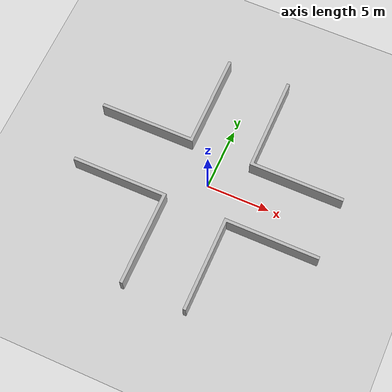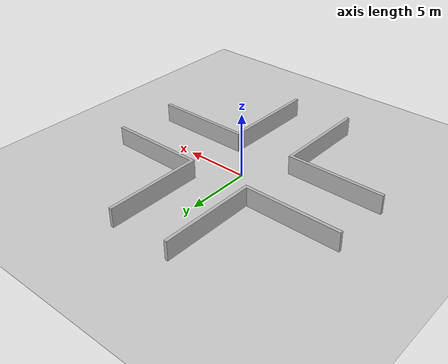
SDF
<sdf version="1.7">
 <world name="default">
  <light name="sun" type="directional">
   <pose>0 0 10 0 -0 0</pose>
   <diffuse>0.8 0.8 0.8 1</diffuse>
   <specular>0.2 0.2 0.2 1</specular>
   <attenuation>
    <range>1000</range>
    <constant>0.9</constant>
    <linear>0.01</linear>
    <quadratic>0.001</quadratic>
   </attenuation>
   <direction>-0.5 0.1 -0.9</direction>
   <spot><inner_angle>0</inner_angle><outer_angle>0</outer_angle><falloff>0</falloff></spot>
  </light>
  <model name="ground_plane">
   <static>1</static>
   <link name="link">
    <collision name="collision">
     <geometry><plane><normal>0 0 1</normal><size>100 100</size></plane></geometry>
     <surface><friction><ode><mu>100</mu><mu2>50</mu2></ode></friction></surface>
    </collision>
    <visual name="visual">
     <cast_shadows>0</cast_shadows>
     <geometry><plane><normal>0 0 1</normal><size>100 100</size></plane></geometry>
     <material>
      <script><uri>file://media/materials/scripts/gazebo.material</uri><name>Gazebo/Grey</name></script>
     </material>
    </visual>
   </link>
  </model>
  <gravity>0 0 -9.8</gravity>
  <magnetic_field>6e-06 2.3e-05 -4.2e-05</magnetic_field>
  <atmosphere type="adiabatic"/>
  <physics type="ode">
   <max_step_size>0.001</max_step_size>
   <real_time_factor>1</real_time_factor>
   <real_time_update_rate>1000</real_time_update_rate>
  </physics>
  <scene><ambient>0.4 0.4 0.4 1</ambient><background>0.7 0.7 0.7 1</background><shadows>1</shadows></scene>
  <audio><device>default</device></audio>
  <spherical_coordinates>
   <surface_model>EARTH_WGS84</surface_model>
   <latitude_deg>0</latitude_deg>
   <longitude_deg>0</longitude_deg>
   <elevation>0</elevation>
   <heading_deg>0</heading_deg>
  </spherical_coordinates>
  <model name="intersection_hallway">
   <link name="link">
    <inertial>
     <mass>15</mass>
     <inertia><ixx>0</ixx><ixy>0</ixy><ixz>0</ixz><iyy>0</iyy><iyz>0</iyz><izz>0</izz></inertia>
    </inertial>
    <collision name="collision_0">
     <pose>-2.475000 -6.325000 0.750000 0 0 0</pose>
     <geometry><box><size>0.250000 7.350000 1.500000</size></box></geometry>
    </collision>
    <collision name="collision_1">
     <pose>2.525000 -6.325000 0.750000 0 0 0</pose>
     <geometry><box><size>0.250000 7.350000 1.500000</size></box></geometry>
    </collision>
    <collision name="collision_2">
     <pose>-6.175000 -2.525000 0.750000 0 0 0</pose>
     <geometry><box><size>7.650000 0.250000 1.500000</size></box></geometry>
    </collision>
    <collision name="collision_3">
     <pose>6.200000 -2.525000 0.750000 0 0 0</pose>
     <geometry><box><size>7.600000 0.250000 1.500000</size></box></geometry>
    </collision>
    <collision name="collision_4">
     <pose>-6.175000 2.475000 0.750000 0 0 0</pose>
     <geometry><box><size>7.650000 0.250000 1.500000</size></box></geometry>
    </collision>
    <collision name="collision_5">
     <pose>6.200000 2.475000 0.750000 0 0 0</pose>
     <geometry><box><size>7.600000 0.250000 1.500000</size></box></geometry>
    </collision>
    <collision name="collision_6">
     <pose>-2.475000 6.300000 0.750000 0 0 0</pose>
     <geometry><box><size>0.250000 7.400000 1.500000</size></box></geometry>
    </collision>
    <collision name="collision_7">
     <pose>2.525000 6.300000 0.750000 0 0 0</pose>
     <geometry><box><size>0.250000 7.400000 1.500000</size></box></geometry>
    </collision>
    <visual name="visual">
     <geometry><mesh><uri>model://intersection_hallway/meshes/intersection_hallway.stl</uri></mesh></geometry>
    </visual>
   </link>
   <static>1</static>
  </model>
 </world>
</sdf>
